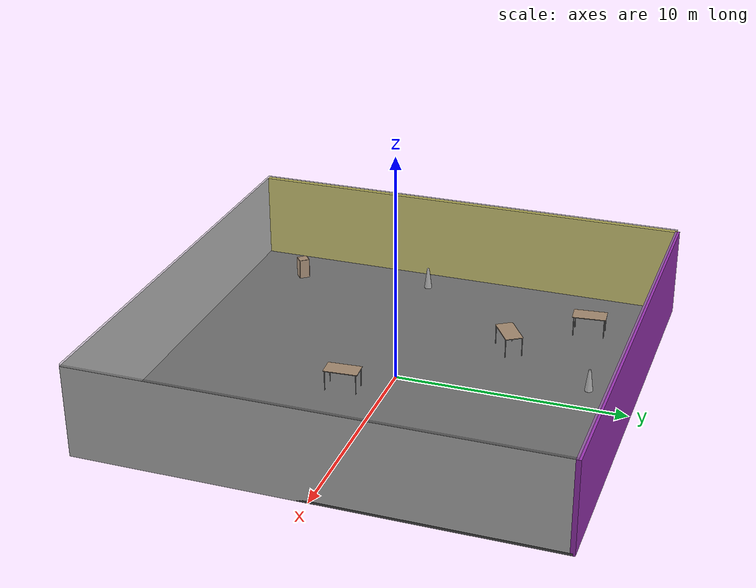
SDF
<sdf version="1.4">
 <world name="default">
  <physics type="ode">
   <max_step_size>0.001</max_step_size>
   <real_time_factor>1</real_time_factor>
   <real_time_update_rate>1000</real_time_update_rate>
   <gravity>0 0 -9.8</gravity>
  </physics>
  <scene><ambient>0.4 0.4 0.4 1</ambient><background>0.7 0.7 0.7 1</background><shadows>1</shadows></scene>
  <model name="Surrounding">
   <static>1</static>
   <link name="Ceiling">
    <collision name="Ceiling_Collision"><geometry><box><size>20 20 0.1</size></box></geometry></collision>
    <visual name="Ceiling_Visual">
     <geometry><box><size>20 20 0.1</size></box></geometry>
     <material>
      <script><uri>file://media/materials/scripts/gazebo.material</uri><name>Gazebo/GreyTransparent</name></script>
     </material>
    </visual>
    <pose>0 0 4.05 0 0 0</pose>
   </link>
   <link name="Wall_South">
    <collision name="Wall_South_Collision">
     <geometry><box><size>20 0 4</size></box></geometry>
     <pose>0 0 2 0 -0 0</pose>
    </collision>
    <visual name="Wall_South_Visual">
     <pose>0 0 2 0 -0 0</pose>
     <geometry><box><size>20 0 4</size></box></geometry>
     <material>
      <script><uri>file://media/materials/scripts/gazebo.material</uri><name>Gazebo/PioneerBody</name></script>
     </material>
    </visual>
    <velocity_decay><linear>0</linear><angular>0</angular></velocity_decay>
    <pose>0 -10 0 0 -0 0</pose>
   </link>
   <link name="Wall_East">
    <collision name="Wall_21_Collision">
     <geometry><box><size>20 0 4</size></box></geometry>
     <pose>0 0 2 0 -0 0</pose>
    </collision>
    <visual name="Wall_21_Visual">
     <pose>0 0 2 0 -0 0</pose>
     <geometry><box><size>20 0 4</size></box></geometry>
     <material>
      <script><uri>file://media/materials/scripts/gazebo.material</uri><name>Gazebo/PioneerBody</name></script>
     </material>
    </visual>
    <velocity_decay><linear>0</linear><angular>0</angular></velocity_decay>
    <pose>10 0 0 0 -0 1.5708</pose>
   </link>
   <link name="Wall_North">
    <collision name="Wall_22_Collision">
     <geometry><box><size>20 0.2 4</size></box></geometry>
     <pose>0 0 2 0 -0 0</pose>
    </collision>
    <visual name="Wall_22_Visual">
     <pose>0 0 2 0 -0 0</pose>
     <geometry><box><size>20 0.2 4</size></box></geometry>
     <material>
      <script><uri>file://media/materials/scripts/gazebo.material</uri><name>Gazebo/PurpleGlow</name></script>
     </material>
    </visual>
    <velocity_decay><linear>0</linear><angular>0</angular></velocity_decay>
    <pose>0 10 0 0 -0 0</pose>
   </link>
   <link name="Wall_West">
    <collision name="Wall_23_Collision">
     <geometry><box><size>20 0.2 4</size></box></geometry>
     <pose>0 0 2 0 -0 0</pose>
    </collision>
    <visual name="Wall_23_Visual">
     <pose>0 0 2 0 -0 0</pose>
     <geometry><box><size>20 0.2 4</size></box></geometry>
     <material>
      <script><uri>file://media/materials/scripts/gazebo.material</uri><name>Gazebo/YellowGlow</name></script>
     </material>
    </visual>
    <velocity_decay><linear>0</linear><angular>0</angular></velocity_decay>
    <pose>-10 0 0 0 0 -1.5708</pose>
   </link>
   <link name="Ground_link">
    <collision name="collision">
     <pose>0 0 .05 0 -0 0</pose>
     <geometry><box><size>20 20 0.1</size></box></geometry>
    </collision>
    <visual name="visual">
     <pose>0 0 .05 0 -0 0</pose>
     <geometry><box><size>20 20 0.1</size></box></geometry>
     <material>
      <script><uri>file://media/materials/scripts/gazebo.material</uri><name>Gazebo/Road</name></script>
     </material>
    </visual>
   </link>
   <static>1</static>
  </model>
  <spherical_coordinates>
   <surface_model>EARTH_WGS84</surface_model>
   <latitude_deg>0</latitude_deg>
   <longitude_deg>0</longitude_deg>
   <elevation>0</elevation>
   <heading_deg>0</heading_deg>
  </spherical_coordinates>
  <light name="lightball_0" type="diffuse">
   <diffuse>0.8 0.8 0.8 1</diffuse>
   <specular>0.2 0.2 0.2 1</specular>
   <attenuation>
    <range>100</range>
    <constant>0.7</constant>
    <linear>0.01</linear>
    <quadratic>0.001</quadratic>
   </attenuation>
   <direction>-0.5 0.1 -0.9</direction>
   <pose>-9.42781967354 7.99876765165 1.1272628978 0 0 0</pose>
  </light>
  <light name="lightball_1" type="diffuse">
   <diffuse>0.8 0.8 0.8 1</diffuse>
   <specular>0.2 0.2 0.2 1</specular>
   <attenuation>
    <range>100</range>
    <constant>0.7</constant>
    <linear>0.01</linear>
    <quadratic>0.001</quadratic>
   </attenuation>
   <direction>-0.5 0.1 -0.9</direction>
   <pose>8.30735685118 -1.9778744574 2.50655352305 0 0 0</pose>
  </light>
  <light name="lightball_2" type="diffuse">
   <diffuse>0.8 0.8 0.8 1</diffuse>
   <specular>0.2 0.2 0.2 1</specular>
   <attenuation>
    <range>100</range>
    <constant>0.7</constant>
    <linear>0.01</linear>
    <quadratic>0.001</quadratic>
   </attenuation>
   <direction>-0.5 0.1 -0.9</direction>
   <pose>1.67058125471 2.23721784661 3.32114662997 0 0 0</pose>
  </light>
  <include><uri>model://cabinet</uri><pose>-7.78265220554 -7.39982446546 0 0 0 0.673218932848</pose></include>
  <include>
   <uri>model://construction_cone</uri>
   <pose>-8.51053711185 -1.30754524296 0 0 0 1.43468398943</pose>
  </include>
  <include><uri>model://table</uri><pose>-6.4357900604 6.94596436499 0 0 0 1.67055743132</pose></include>
  <include><uri>model://table</uri><pose>-3.7743289003 3.93628864094 0 0 0 0.576886581301</pose></include>
  <include>
   <uri>model://construction_cone</uri>
   <pose>-1.39404679943 8.04950991422 0 0 0 0.638367842394</pose>
  </include>
  <include><uri>model://table</uri><pose>1.73860938572 -1.75662212007 0 0 0 1.63343754843</pose></include>
 </world>
</sdf>

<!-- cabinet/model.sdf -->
<sdf version="1.5">
  <model name="cabinet">
    <static>true</static>
    <link name="cabinet_bottom_plate">
      <inertial>
        <pose>0 0 -1 0 0 0</pose>
        <inertia>
          <ixx>2.050000</ixx>
          <ixy>0</ixy>
          <ixz>0</ixz>
          <iyy>2.050000</iyy>
          <iyz>0</iyz>
          <izz>2.050000</izz>
        </inertia>
        <mass>25.000000</mass>
      </inertial>
      <collision name="cabinet_bottom_plate_geom">
        <pose>0 0 0.010000 0 0 0</pose>
        <geometry>
          <box>
            <size>0.450000 0.450000 0.020000</size>
          </box>
        </geometry>
      </collision>
      <visual name="cabinet_bottom_plate_geom_visual">
        <pose>0 0 0.010000 0 0 0</pose>
        <geometry>
          <box>
            <size>0.450000 0.450000 0.020000</size>
          </box>
        </geometry>
        <material>
          <script>
            <uri>model://media/materials/scripts/gazebo.material</uri>
            <name>Gazebo/Wood</name>
          </script>
        </material>
      </visual>
      <collision name="cabinet_bottom_plate_geom_cabinet_back_plate">
        <pose>0.235000 0 0.510000 0 0 0</pose>
        <geometry>
          <box>
            <size>0.020000 0.450000 1.020000</size>
          </box>
        </geometry>
      </collision>
      <visual name="cabinet_bottom_plate_geom_cabinet_back_plate_visual">
        <pose>0.235000 0 0.510000 0 0 0</pose>
        <geometry>
          <box>
            <size>0.020000 0.450000 1.020000</size>
          </box>
        </geometry>
        <material>
          <script>
            <uri>model://media/materials/scripts/gazebo.material</uri>
            <name>Gazebo/Wood</name>
          </script>
        </material>
      </visual>
      <collision name="cabinet_bottom_plate_geom_cabinet_left_plate">
        <pose>0 0.235000 0.510000 0 0 0</pose>
        <geometry>
          <box>
            <size>0.450000 0.020000 1.020000</size>
          </box>
        </geometry>
      </collision>
      <visual name="cabinet_bottom_plate_geom_cabinet_left_plate_visual">
        <pose>0 0.235000 0.510000 0 0 0</pose>
        <geometry>
          <box>
            <size>0.450000 0.020000 1.020000</size>
          </box>
        </geometry>
        <material>
          <script>
            <uri>model://media/materials/scripts/gazebo.material</uri>
            <name>Gazebo/Wood</name>
          </script>
        </material>
      </visual>
      <collision name="cabinet_bottom_plate_geom_cabinet_middle_plate">
        <pose>0 0 0.510000 0 0 0</pose>
        <geometry>
          <box>
            <size>0.450000 0.450000 0.020000</size>
          </box>
        </geometry>
      </collision>
      <visual name="cabinet_bottom_plate_geom_cabinet_middle_plate_visual">
        <pose>0 0 0.510000 0 0 0</pose>
        <geometry>
          <box>
            <size>0.450000 0.450000 0.020000</size>
          </box>
        </geometry>
        <material>
          <script>
            <uri>model://media/materials/scripts/gazebo.material</uri>
            <name>Gazebo/Wood</name>
          </script>
        </material>
      </visual>
      <collision name="cabinet_bottom_plate_geom_cabinet_right_plate">
        <pose>0 -0.235000 0.510000 0 0 0</pose>
        <geometry>
          <box>
            <size>0.450000 0.020000 1.020000</size>
          </box>
        </geometry>
      </collision>
      <visual name="cabinet_bottom_plate_geom_cabinet_right_plate_visual">
        <pose>0 -0.235000 0.510000 0 0 0</pose>
        <geometry>
          <box>
            <size>0.450000 0.020000 1.020000</size>
          </box>
        </geometry>
        <material>
          <script>
            <uri>model://media/materials/scripts/gazebo.material</uri>
            <name>Gazebo/Wood</name>
          </script>
        </material>
      </visual>
      <collision name="cabinet_bottom_plate_geom_cabinet_top_plate">
        <pose>0 0 1.010000 0 0 0</pose>
        <geometry>
          <box>
            <size>0.450000 0.450000 0.020000</size>
          </box>
        </geometry>
      </collision>
      <visual name="cabinet_bottom_plate_geom_cabinet_top_plate_visual">
        <pose>0 0 1.010000 0 0 0</pose>
        <geometry>
          <box>
            <size>0.450000 0.450000 0.020000</size>
          </box>
        </geometry>
        <material>
          <script>
            <uri>model://media/materials/scripts/gazebo.material</uri>
            <name>Gazebo/Wood</name>
          </script>
        </material>
      </visual>
    </link>
  </model>
</sdf>

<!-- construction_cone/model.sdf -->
<sdf version="1.5">
  <model name="Construction Cone">
    <link name="link">
      <collision name="collision">
        <geometry>
          <mesh>
            <scale>10 10 10</scale>
            <uri>file://isr-testbed/construction_cone/meshes/construction_cone.dae</uri>
          </mesh>
        </geometry>
      </collision>
      <visual name="visual">
        <geometry>
          <mesh>
            <scale>10 10 10</scale>
            <uri>file://isr-testbed/construction_cone/meshes/construction_cone.dae</uri>
          </mesh>
        </geometry>
      </visual>
    </link>
  </model>
</sdf>

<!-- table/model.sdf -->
<sdf version="1.5">
  <model name="table">
    <static>true</static>
    <link name="link">
      <collision name="surface">
        <pose>0 0 1.0 0 0 0</pose>
        <geometry>
          <box>
            <size>1.5 0.8 0.03</size>
          </box>
        </geometry>
        <surface>
          <friction>
            <ode>
              <mu>0.6</mu>
              <mu2>0.6</mu2>
            </ode>
          </friction>
        </surface>
      </collision>
      <visual name="visual1">
        <pose>0 0 1.0 0 0 0</pose>
        <geometry>
          <box>
            <size>1.5 0.8 0.03</size>
          </box>
        </geometry>
        <material>
          <script>
            <uri>model://media/materials/scripts/gazebo.material</uri>
            <name>Gazebo/Wood</name>
          </script>
        </material>
      </visual>
      <collision name="front_left_leg">
        <pose>0.68 0.38 0.5 0 0 0</pose>
        <geometry>
          <cylinder>
            <radius>0.02</radius>
            <length>1.0</length>
          </cylinder>
        </geometry>
      </collision>
      <visual name="front_left_leg">
        <pose>0.68 0.38 0.5 0 0 0</pose>
        <geometry>
          <cylinder>
            <radius>0.02</radius>
            <length>1.0</length>
          </cylinder>
        </geometry>
        <material>
          <script>
            <uri>model://media/materials/scripts/gazebo.material</uri>
            <name>Gazebo/Grey</name>
          </script>
        </material>
      </visual>
      <collision name="front_right_leg">
        <pose>0.68 -0.38 0.5 0 0 0</pose>
        <geometry>
          <cylinder>
            <radius>0.02</radius>
            <length>1.0</length>
          </cylinder>
        </geometry>
      </collision>
      <visual name="front_right_leg">
        <pose>0.68 -0.38 0.5 0 0 0</pose>
        <geometry>
          <cylinder>
            <radius>0.02</radius>
            <length>1.0</length>
          </cylinder>
        </geometry>
        <material>
          <script>
            <uri>model://media/materials/scripts/gazebo.material</uri>
            <name>Gazebo/Grey</name>
          </script>
        </material>
      </visual>
      <collision name="back_right_leg">
        <pose>-0.68 -0.38 0.5 0 0 0</pose>
        <geometry>
          <cylinder>
            <radius>0.02</radius>
            <length>1.0</length>
          </cylinder>
        </geometry>
      </collision>
      <visual name="back_right_leg">
        <pose>-0.68 -0.38 0.5 0 0 0</pose>
        <geometry>
          <cylinder>
            <radius>0.02</radius>
            <length>1.0</length>
          </cylinder>
        </geometry>
        <material>
          <script>
            <uri>model://media/materials/scripts/gazebo.material</uri>
            <name>Gazebo/Grey</name>
          </script>
        </material>
      </visual>
      <collision name="back_left_leg">
        <pose>-0.68 0.38 0.5 0 0 0</pose>
        <geometry>
          <cylinder>
            <radius>0.02</radius>
            <length>1.0</length>
          </cylinder>
        </geometry>
      </collision>
      <visual name="back_left_leg">
        <pose>-0.68 0.38 0.5 0 0 0</pose>
        <geometry>
          <cylinder>
            <radius>0.02</radius>
            <length>1.0</length>
          </cylinder>
        </geometry>
        <material>
          <script>
            <uri>model://media/materials/scripts/gazebo.material</uri>
            <name>Gazebo/Grey</name>
          </script>
        </material>
      </visual>
    </link>
  </model>
</sdf>
